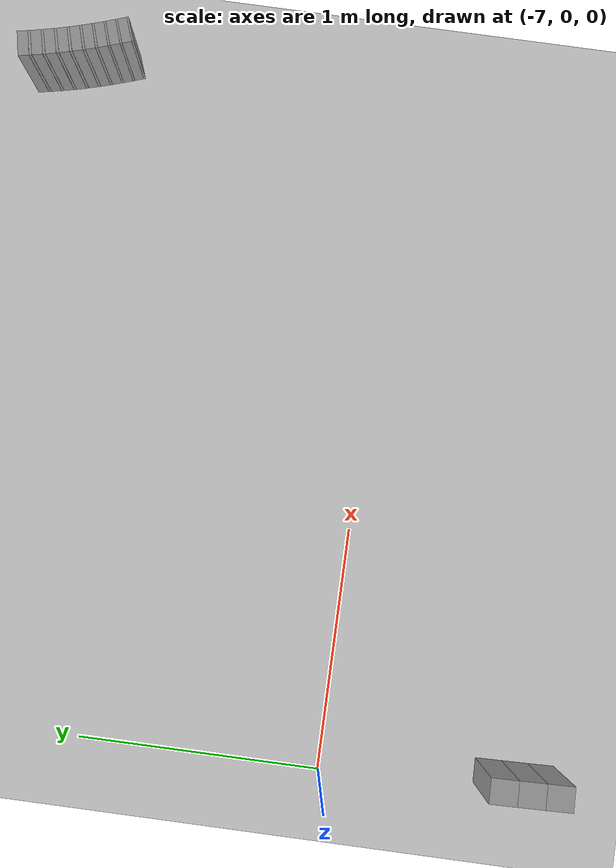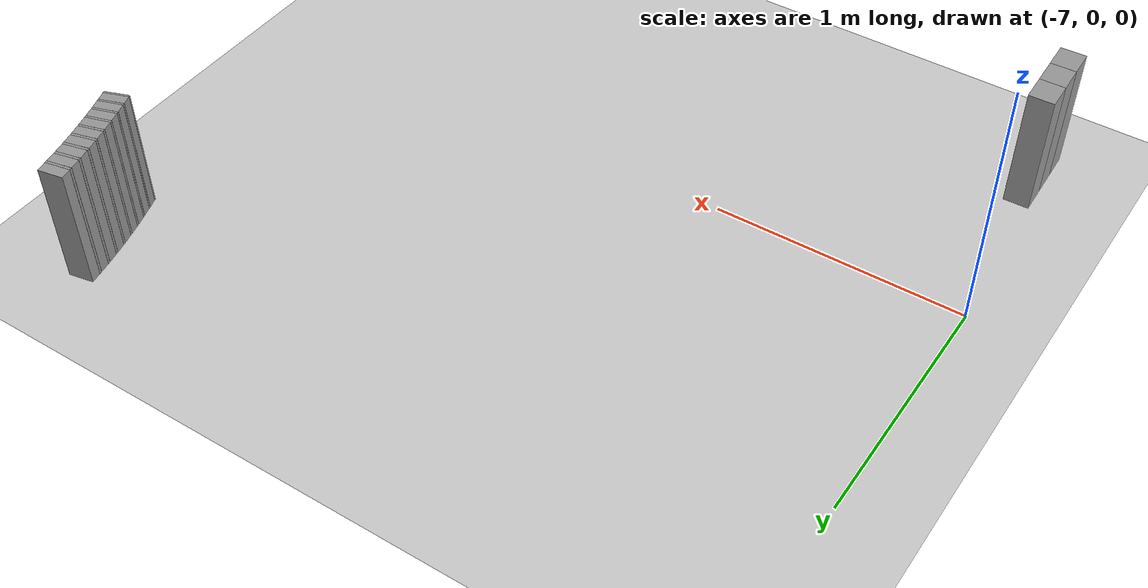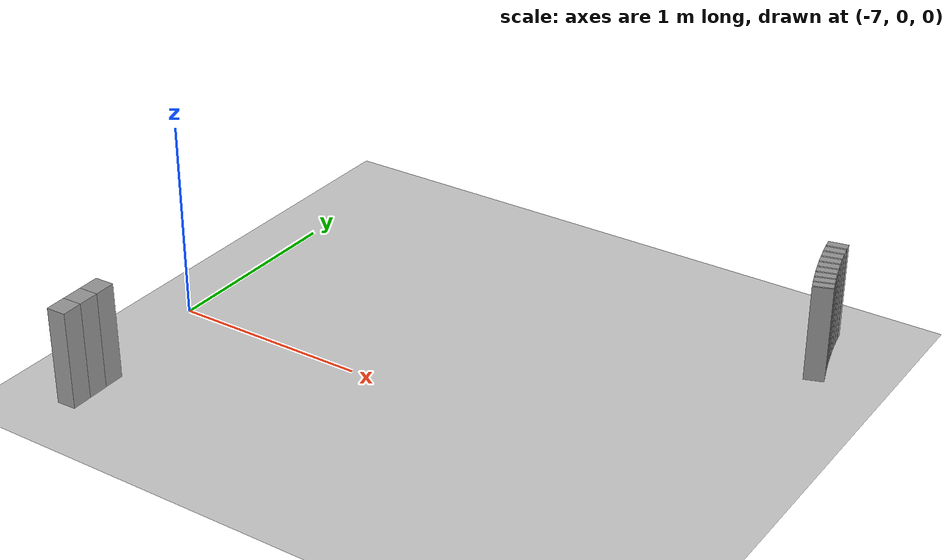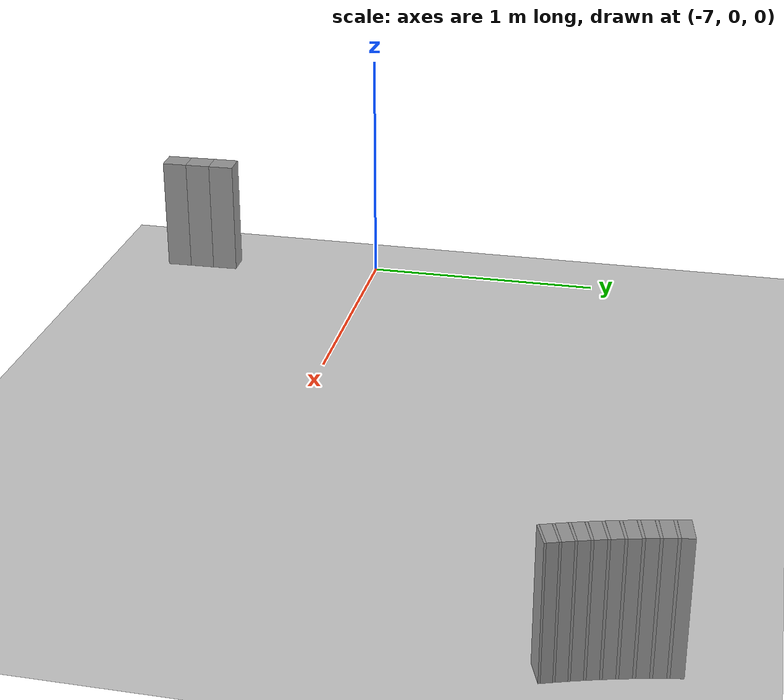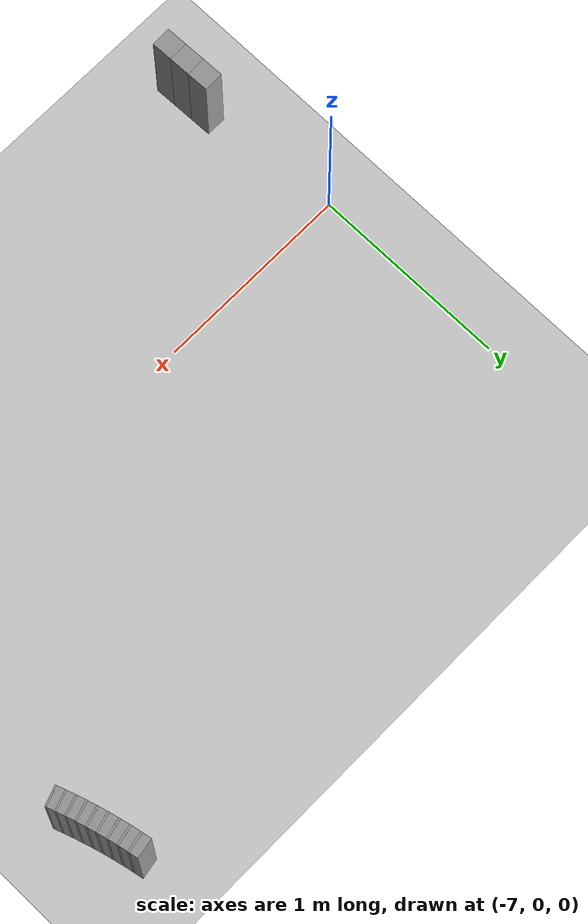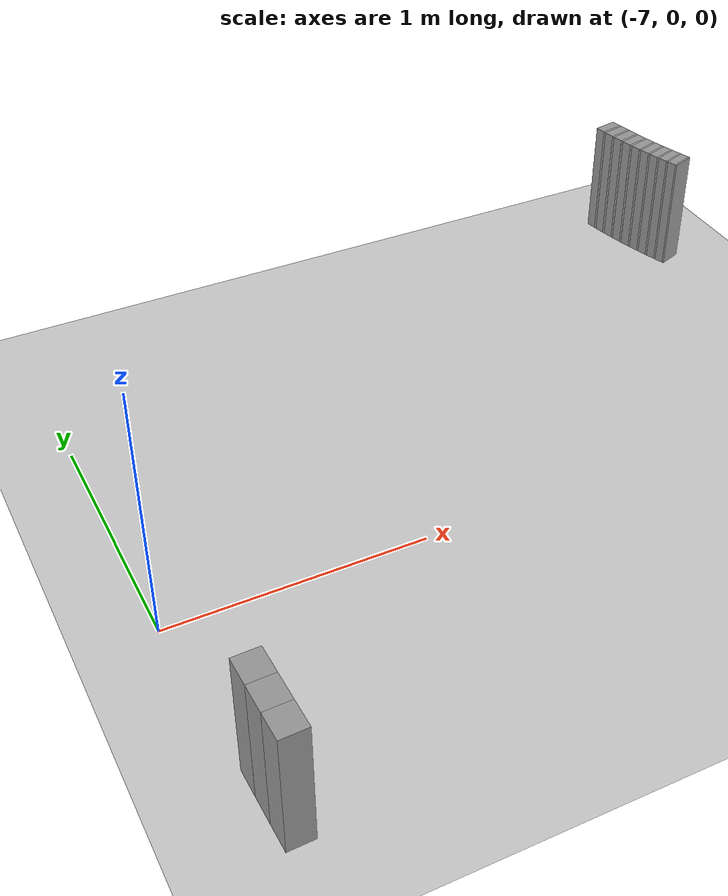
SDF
<sdf version="1.6">
 <world name="default">
  <include><uri>model://ground_plane</uri></include>
  <include><uri>model://sun</uri></include>
  <model name="wall_339_inward">
   <static>true</static>
   <link name="link">
    <collision name="collision">
     <geometry><box><size>0.10740227265104531 0.1 0.5</size></box></geometry>
    </collision>
    <visual name="visual">
     <geometry><box><size>0.10740227265104531 0.1 0.5</size></box></geometry>
     <material>
      <script><uri>file://media/materials/scripts/gazebo.material</uri><name>Gazebo/Gray</name></script>
     </material>
    </visual>
   </link>
   <pose>-6.908333083858175 -0.9123678111420888 0.25 0 0 1.5987557080209038</pose>
  </model>
  <model name="wall_340_inward">
   <static>true</static>
   <link name="link">
    <collision name="collision">
     <geometry><box><size>0.1085346621393695 0.1 0.5</size></box></geometry>
    </collision>
    <visual name="visual">
     <geometry><box><size>0.1085346621393695 0.1 0.5</size></box></geometry>
     <material>
      <script><uri>file://media/materials/scripts/gazebo.material</uri><name>Gazebo/Gray</name></script>
     </material>
    </visual>
   </link>
   <pose>-6.911243960746468 -0.8044386431121451 0.25 0 0 1.5967747653396342</pose>
  </model>
  <model name="wall_341_inward">
   <static>true</static>
   <link name="link">
    <collision name="collision">
     <geometry><box><size>0.10942003762338985 0.1 0.5</size></box></geometry>
    </collision>
    <visual name="visual">
     <geometry><box><size>0.10942003762338985 0.1 0.5</size></box></geometry>
     <material>
      <script><uri>file://media/materials/scripts/gazebo.material</uri><name>Gazebo/Gray</name></script>
     </material>
    </visual>
   </link>
   <pose>-6.91397500922943 -0.6954955648713135 0.25 0 0 1.5949519580549103</pose>
  </model>
  <model name="wall_637_inward">
   <static>true</static>
   <link name="link">
    <collision name="collision">
     <geometry><box><size>0.04332358289737421 0.1 0.5</size></box></geometry>
    </collision>
    <visual name="visual">
     <geometry><box><size>0.04332358289737421 0.1 0.5</size></box></geometry>
     <material>
      <script><uri>file://media/materials/scripts/gazebo.material</uri><name>Gazebo/Gray</name></script>
     </material>
    </visual>
   </link>
   <pose>-4.2686894455386 1.552817506217515 0.25 0 0 -1.3861267222075515</pose>
  </model>
  <model name="wall_638_inward">
   <static>true</static>
   <link name="link">
    <collision name="collision">
     <geometry><box><size>0.010488411804064577 0.1 0.5</size></box></geometry>
    </collision>
    <visual name="visual">
     <geometry><box><size>0.010488411804064577 0.1 0.5</size></box></geometry>
     <material>
      <script><uri>file://media/materials/scripts/gazebo.material</uri><name>Gazebo/Gray</name></script>
     </material>
    </visual>
   </link>
   <pose>-4.2636949035927785 1.5263793756634119 0.25 0 0 -1.3756381180945891</pose>
  </model>
  <model name="wall_639_inward">
   <static>true</static>
   <link name="link">
    <collision name="collision">
     <geometry><box><size>0.04286626683440924 0.1 0.5</size></box></geometry>
    </collision>
    <visual name="visual">
     <geometry><box><size>0.04286626683440924 0.1 0.5</size></box></geometry>
     <material>
      <script><uri>file://media/materials/scripts/gazebo.material</uri><name>Gazebo/Gray</name></script>
     </material>
    </visual>
   </link>
   <pose>-4.258301283917579 1.5002532022949966 0.25 0 0 -1.3651495139815613</pose>
  </model>
  <model name="wall_640_inward">
   <static>true</static>
   <link name="link">
    <collision name="collision">
     <geometry><box><size>0.010477765703385364 0.1 0.5</size></box></geometry>
    </collision>
    <visual name="visual">
     <geometry><box><size>0.010477765703385364 0.1 0.5</size></box></geometry>
     <material>
      <script><uri>file://media/materials/scripts/gazebo.material</uri><name>Gazebo/Gray</name></script>
     </material>
    </visual>
   </link>
   <pose>-4.252801171443199 1.4741546795943452 0.25 0 0 -1.3546715565542844</pose>
  </model>
  <model name="wall_641_inward">
   <static>true</static>
   <link name="link">
    <collision name="collision">
     <geometry><box><size>0.04234520459159316 0.1 0.5</size></box></geometry>
    </collision>
    <visual name="visual">
     <geometry><box><size>0.04234520459159316 0.1 0.5</size></box></geometry>
     <material>
      <script><uri>file://media/materials/scripts/gazebo.material</uri><name>Gazebo/Gray</name></script>
     </material>
    </visual>
   </link>
   <pose>-4.24692089832107 1.4484063445396087 0.25 0 0 -1.3441935991270113</pose>
  </model>
  <model name="wall_642_inward">
   <static>true</static>
   <link name="link">
    <collision name="collision">
     <geometry><box><size>0.010343641462456808 0.1 0.5</size></box></geometry>
    </collision>
    <visual name="visual">
     <geometry><box><size>0.010343641462456808 0.1 0.5</size></box></geometry>
     <material>
      <script><uri>file://media/materials/scripts/gazebo.material</uri><name>Gazebo/Gray</name></script>
     </material>
    </visual>
   </link>
   <pose>-4.2409500731325025 1.4227476977460078 0.25 0 0 -1.3338497732096832</pose>
  </model>
  <model name="wall_643_inward">
   <static>true</static>
   <link name="link">
    <collision name="collision">
     <geometry><box><size>0.041766141304053137 0.1 0.5</size></box></geometry>
    </collision>
    <visual name="visual">
     <geometry><box><size>0.041766141304053137 0.1 0.5</size></box></geometry>
     <material>
      <script><uri>file://media/materials/scripts/gazebo.material</uri><name>Gazebo/Gray</name></script>
     </material>
    </visual>
   </link>
   <pose>-4.234624353356988 1.3974725898607323 0.25 0 0 -1.3235059472924353</pose>
  </model>
  <model name="wall_644_inward">
   <static>true</static>
   <link name="link">
    <collision name="collision">
     <geometry><box><size>0.010068377526048456 0.1 0.5</size></box></geometry>
    </collision>
    <visual name="visual">
     <geometry><box><size>0.010068377526048456 0.1 0.5</size></box></geometry>
     <material>
      <script><uri>file://media/materials/scripts/gazebo.material</uri><name>Gazebo/Gray</name></script>
     </material>
    </visual>
   </link>
   <pose>-4.228231305260374 1.3723564075441823 0.25 0 0 -1.3134373996496</pose>
  </model>
  <model name="wall_645_inward">
   <static>true</static>
   <link name="link">
    <collision name="collision">
     <geometry><box><size>0.04113331381063838 0.1 0.5</size></box></geometry>
    </collision>
    <visual name="visual">
     <geometry><box><size>0.04113331381063838 0.1 0.5</size></box></geometry>
     <material>
      <script><uri>file://media/materials/scripts/gazebo.material</uri><name>Gazebo/Gray</name></script>
     </material>
    </visual>
   </link>
   <pose>-4.221515202102261 1.3476524248426172 0.25 0 0 -1.3033688520068603</pose>
  </model>
  <model name="wall_646_inward">
   <static>true</static>
   <link name="link">
    <collision name="collision">
     <geometry><box><size>0.009701120740545018 0.1 0.5</size></box></geometry>
    </collision>
    <visual name="visual">
     <geometry><box><size>0.009701120740545018 0.1 0.5</size></box></geometry>
     <material>
      <script><uri>file://media/materials/scripts/gazebo.material</uri><name>Gazebo/Gray</name></script>
     </material>
    </visual>
   </link>
   <pose>-4.214753348223755 1.323151345736388 0.25 0 0 -1.2936675790949252</pose>
  </model>
  <model name="wall_647_inward">
   <static>true</static>
   <link name="link">
    <collision name="collision">
     <geometry><box><size>0.04045021482428825 0.1 0.5</size></box></geometry>
    </collision>
    <visual name="visual">
     <geometry><box><size>0.04045021482428825 0.1 0.5</size></box></geometry>
     <material>
      <script><uri>file://media/materials/scripts/gazebo.material</uri><name>Gazebo/Gray</name></script>
     </material>
    </visual>
   </link>
   <pose>-4.207704309312105 1.2990870374711432 0.25 0 0 -1.2839663061831075</pose>
  </model>
  <model name="wall_648_inward">
   <static>true</static>
   <link name="link">
    <collision name="collision">
     <geometry><box><size>0.009254839147044122 0.1 0.5</size></box></geometry>
    </collision>
    <visual name="visual">
     <geometry><box><size>0.009254839147044122 0.1 0.5</size></box></geometry>
     <material>
      <script><uri>file://media/materials/scripts/gazebo.material</uri><name>Gazebo/Gray</name></script>
     </material>
    </visual>
   </link>
   <pose>-4.200632181546701 1.2752621536290065 0.25 0 0 -1.274711334914907</pose>
  </model>
  <model name="wall_649_inward">
   <static>true</static>
   <link name="link">
    <collision name="collision">
     <geometry><box><size>0.03972118777992302 0.1 0.5</size></box></geometry>
    </collision>
    <visual name="visual">
     <geometry><box><size>0.03972118777992302 0.1 0.5</size></box></geometry>
     <material>
      <script><uri>file://media/materials/scripts/gazebo.material</uri><name>Gazebo/Gray</name></script>
     </material>
    </visual>
   </link>
   <pose>-4.193311562531006 1.2518941526717073 0.25 0 0 -1.2654563636468374</pose>
  </model>
  <model name="wall_650_inward">
   <static>true</static>
   <link name="link">
    <collision name="collision">
     <geometry><box><size>0.008762307573785948 0.1 0.5</size></box></geometry>
    </collision>
    <visual name="visual">
     <geometry><box><size>0.008762307573785948 0.1 0.5</size></box></geometry>
     <material>
      <script><uri>file://media/materials/scripts/gazebo.material</uri><name>Gazebo/Gray</name></script>
     </material>
    </visual>
   </link>
   <pose>-4.185987507865202 1.2287854124871411 0.25 0 0 -1.256693943943755</pose>
  </model>
  <model name="wall_651_inward">
   <static>true</static>
   <link name="link">
    <collision name="collision">
     <geometry><box><size>0.03894942624567453 0.1 0.5</size></box></geometry>
    </collision>
    <visual name="visual">
     <geometry><box><size>0.03894942624567453 0.1 0.5</size></box></geometry>
     <material>
      <script><uri>file://media/materials/scripts/gazebo.material</uri><name>Gazebo/Gray</name></script>
     </material>
    </visual>
   </link>
   <pose>-4.178454866600575 1.206150149055185 0.25 0 0 -1.2479315242406008</pose>
  </model>
  <model name="wall_652_inward">
   <static>true</static>
   <link name="link">
    <collision name="collision">
     <geometry><box><size>0.008252175647372979 0.1 0.5</size></box></geometry>
    </collision>
    <visual name="visual">
     <geometry><box><size>0.008252175647372979 0.1 0.5</size></box></geometry>
     <material>
      <script><uri>file://media/materials/scripts/gazebo.material</uri><name>Gazebo/Gray</name></script>
     </material>
    </visual>
   </link>
   <pose>-4.170934449698012 1.1837797296842565 0.25 0 0 -1.239679254930381</pose>
  </model>
  <model name="wall_653_inward">
   <static>true</static>
   <link name="link">
    <collision name="collision">
     <geometry><box><size>0.03814061015383582 0.1 0.5</size></box></geometry>
    </collision>
    <visual name="visual">
     <geometry><box><size>0.03814061015383582 0.1 0.5</size></box></geometry>
     <material>
      <script><uri>file://media/materials/scripts/gazebo.material</uri><name>Gazebo/Gray</name></script>
     </material>
    </visual>
   </link>
   <pose>-4.16324469915333 1.161895145573646 0.25 0 0 -1.23142698562012</pose>
  </model>
  <model name="wall_654_inward">
   <static>true</static>
   <link name="link">
    <collision name="collision">
     <geometry><box><size>0.007754597782426534 0.1 0.5</size></box></geometry>
    </collision>
    <visual name="visual">
     <geometry><box><size>0.007754597782426534 0.1 0.5</size></box></geometry>
     <material>
      <script><uri>file://media/materials/scripts/gazebo.material</uri><name>Gazebo/Gray</name></script>
     </material>
    </visual>
   </link>
   <pose>-4.155577301390286 1.1402664818843218 0.25 0 0 -1.2236723101166174</pose>
  </model>
 </world>
</sdf>
